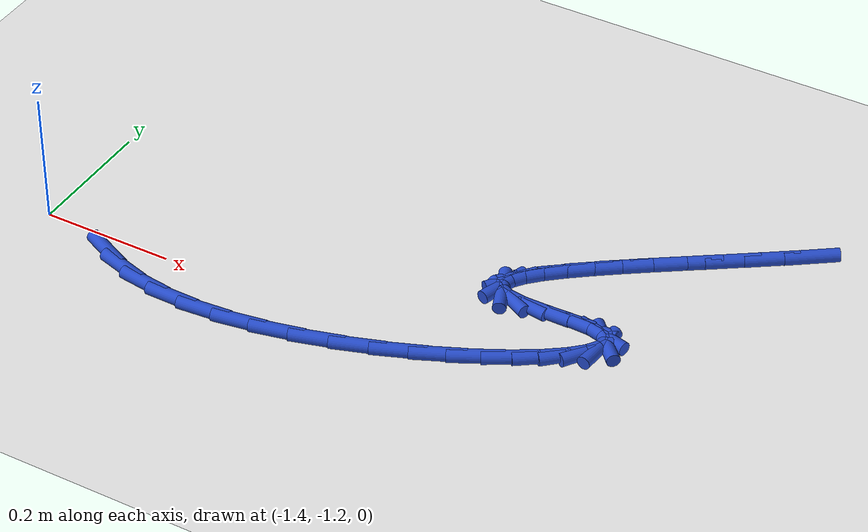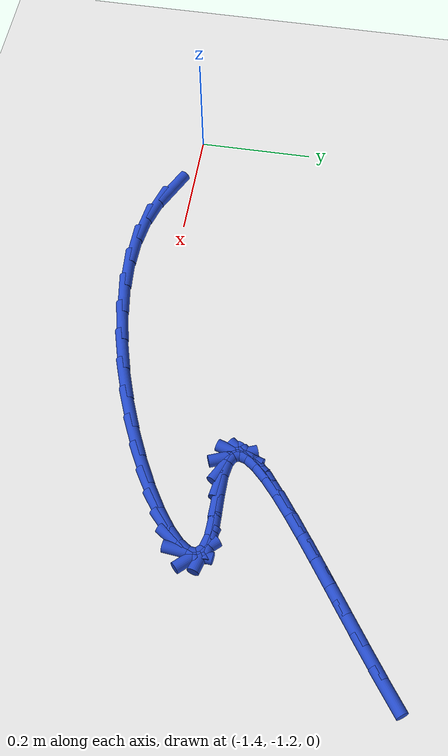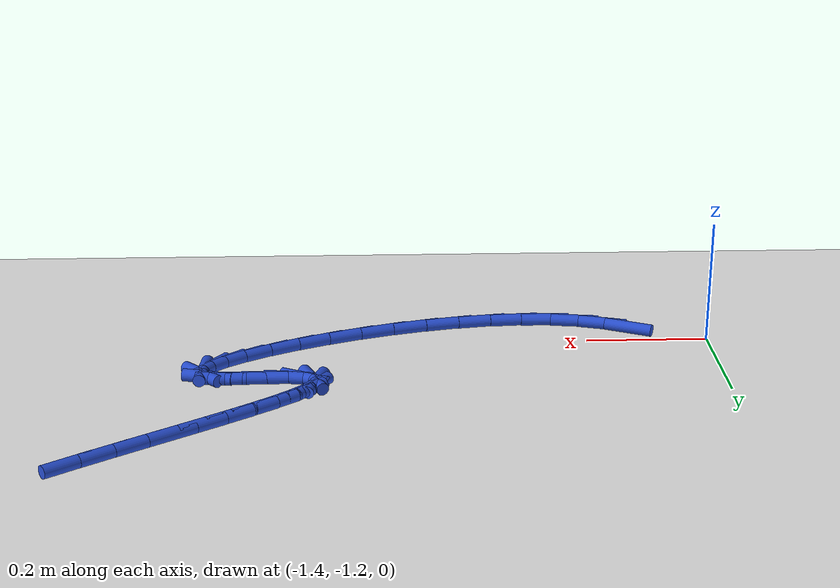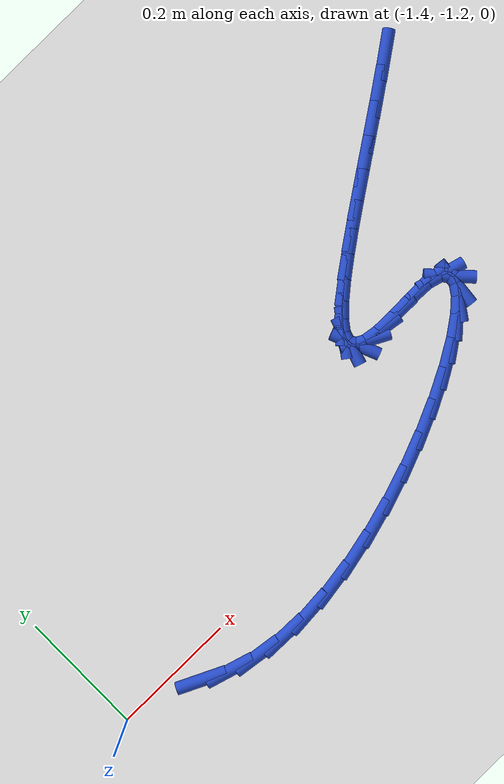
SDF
<sdf version="1.6">
 <world name="default">
  <model name="ground_plane">
   <static>1</static>
   <link name="link">
    <collision name="collision">
     <geometry><plane><normal>0 0 1</normal><size>100 100</size></plane></geometry>
     <surface><friction><ode><mu>100</mu><mu2>50</mu2></ode></friction></surface>
    </collision>
    <visual name="visual">
     <cast_shadows>0</cast_shadows>
     <geometry><plane><normal>0 0 1</normal><size>100 100</size></plane></geometry>
     <material>
      <script><uri>file://media/materials/scripts/gazebo.material</uri><name>Gazebo/WhiteGlow</name></script>
     </material>
    </visual>
   </link>
  </model>
  <model name="line">
   <link name="link_162">
    <pose>-1.2744450038421047 -1.2350158672841616 0.01 0 1.57 -0.4439053100078369</pose>
    <collision name="collision">
     <geometry><cylinder><radius>0.01</radius><length>0.08</length></cylinder></geometry>
    </collision>
    <visual name="visual">
     <material>
      <script><name>Gazebo/Blue</name><uri>file://media/materials/scripts/gazebo.material</uri></script>
     </material>
     <geometry><cylinder><radius>0.01</radius><length>0.08</length></cylinder></geometry>
    </visual>
   </link>
   <link name="link_163">
    <pose>-1.2332095873267295 -1.2546257902048132 0.01 0 1.57 -0.286132054928483</pose>
    <collision name="collision">
     <geometry><cylinder><radius>0.01</radius><length>0.08</length></cylinder></geometry>
    </collision>
    <visual name="visual">
     <material>
      <script><name>Gazebo/Blue</name><uri>file://media/materials/scripts/gazebo.material</uri></script>
     </material>
     <geometry><cylinder><radius>0.01</radius><length>0.08</length></cylinder></geometry>
    </visual>
   </link>
   <link name="link_164">
    <pose>-1.1875805545435727 -1.2680500905544756 0.01 0 1.57 -0.13742164944306184</pose>
    <collision name="collision">
     <geometry><cylinder><radius>0.01</radius><length>0.08</length></cylinder></geometry>
    </collision>
    <visual name="visual">
     <material>
      <script><name>Gazebo/Blue</name><uri>file://media/materials/scripts/gazebo.material</uri></script>
     </material>
     <geometry><cylinder><radius>0.01</radius><length>0.08</length></cylinder></geometry>
    </visual>
   </link>
   <link name="link_165">
    <pose>-1.1378777089525787 -1.2749236606083536 0.01 0 1.57 -0.018472292706329836</pose>
    <collision name="collision">
     <geometry><cylinder><radius>0.01</radius><length>0.08</length></cylinder></geometry>
    </collision>
    <visual name="visual">
     <material>
      <script><name>Gazebo/Blue</name><uri>file://media/materials/scripts/gazebo.material</uri></script>
     </material>
     <geometry><cylinder><radius>0.01</radius><length>0.08</length></cylinder></geometry>
    </visual>
   </link>
   <link name="link_166">
    <pose>-1.0850872491036945 -1.275898932366537 0.01 0 1.57 0.07714788631412677</pose>
    <collision name="collision">
     <geometry><cylinder><radius>0.01</radius><length>0.08</length></cylinder></geometry>
    </collision>
    <visual name="visual">
     <material>
      <script><name>Gazebo/Blue</name><uri>file://media/materials/scripts/gazebo.material</uri></script>
     </material>
     <geometry><cylinder><radius>0.01</radius><length>0.08</length></cylinder></geometry>
    </visual>
   </link>
   <link name="link_167">
    <pose>-1.0302142616538537 -1.2716571786766548 0.01 0 1.57 0.1556117222521611</pose>
    <collision name="collision">
     <geometry><cylinder><radius>0.01</radius><length>0.08</length></cylinder></geometry>
    </collision>
    <visual name="visual">
     <material>
      <script><name>Gazebo/Blue</name><uri>file://media/materials/scripts/gazebo.material</uri></script>
     </material>
     <geometry><cylinder><radius>0.01</radius><length>0.08</length></cylinder></geometry>
    </visual>
   </link>
   <link name="link_168">
    <pose>-0.9742638332599924 -1.2628796723863367 0.01 0 1.57 0.22177073976365766</pose>
    <collision name="collision">
     <geometry><cylinder><radius>0.01</radius><length>0.08</length></cylinder></geometry>
    </collision>
    <visual name="visual">
     <material>
      <script><name>Gazebo/Blue</name><uri>file://media/materials/scripts/gazebo.material</uri></script>
     </material>
     <geometry><cylinder><radius>0.01</radius><length>0.08</length></cylinder></geometry>
    </visual>
   </link>
   <link name="link_169">
    <pose>-0.9182410505790439 -1.2502476863432097 0.01 0 1.57 0.27939315202354315</pose>
    <collision name="collision">
     <geometry><cylinder><radius>0.01</radius><length>0.08</length></cylinder></geometry>
    </collision>
    <visual name="visual">
     <material>
      <script><name>Gazebo/Blue</name><uri>file://media/materials/scripts/gazebo.material</uri></script>
     </material>
     <geometry><cylinder><radius>0.01</radius><length>0.08</length></cylinder></geometry>
    </visual>
   </link>
   <link name="link_170">
    <pose>-0.8631510002679464 -1.2344424933949047 0.01 0 1.57 0.33153427793801343</pose>
    <collision name="collision">
     <geometry><cylinder><radius>0.01</radius><length>0.08</length></cylinder></geometry>
    </collision>
    <visual name="visual">
     <material>
      <script><name>Gazebo/Blue</name><uri>file://media/materials/scripts/gazebo.material</uri></script>
     </material>
     <geometry><cylinder><radius>0.01</radius><length>0.08</length></cylinder></geometry>
    </visual>
   </link>
   <link name="link_171">
    <pose>-0.8099987689836345 -1.21614536638905 0.01 0 1.57 0.38091937223848116</pose>
    <collision name="collision">
     <geometry><cylinder><radius>0.01</radius><length>0.08</length></cylinder></geometry>
    </collision>
    <visual name="visual">
     <material>
      <script><name>Gazebo/Blue</name><uri>file://media/materials/scripts/gazebo.material</uri></script>
     </material>
     <geometry><cylinder><radius>0.01</radius><length>0.08</length></cylinder></geometry>
    </visual>
   </link>
   <link name="link_172">
    <pose>-0.7597894433830428 -1.1960375781732748 0.01 0 1.57 0.43037064542495324</pose>
    <collision name="collision">
     <geometry><cylinder><radius>0.01</radius><length>0.08</length></cylinder></geometry>
    </collision>
    <visual name="visual">
     <material>
      <script><name>Gazebo/Blue</name><uri>file://media/materials/scripts/gazebo.material</uri></script>
     </material>
     <geometry><cylinder><radius>0.01</radius><length>0.08</length></cylinder></geometry>
    </visual>
   </link>
   <link name="link_173">
    <pose>-0.713528110123106 -1.1748004015952072 0.01 0 1.57 0.483417749217814</pose>
    <collision name="collision">
     <geometry><cylinder><radius>0.01</radius><length>0.08</length></cylinder></geometry>
    </collision>
    <visual name="visual">
     <material>
      <script><name>Gazebo/Blue</name><uri>file://media/materials/scripts/gazebo.material</uri></script>
     </material>
     <geometry><cylinder><radius>0.01</radius><length>0.08</length></cylinder></geometry>
    </visual>
   </link>
   <link name="link_174">
    <pose>-0.6722198558607614 -1.1531151095024768 0.01 0 1.57 0.5454396721177419</pose>
    <collision name="collision">
     <geometry><cylinder><radius>0.01</radius><length>0.08</length></cylinder></geometry>
    </collision>
    <visual name="visual">
     <material>
      <script><name>Gazebo/Blue</name><uri>file://media/materials/scripts/gazebo.material</uri></script>
     </material>
     <geometry><cylinder><radius>0.01</radius><length>0.08</length></cylinder></geometry>
    </visual>
   </link>
   <link name="link_175">
    <pose>-0.6368697672529434 -1.1316629747427127 0.01 0 1.57 0.6263203223751467</pose>
    <collision name="collision">
     <geometry><cylinder><radius>0.01</radius><length>0.08</length></cylinder></geometry>
    </collision>
    <visual name="visual">
     <material>
      <script><name>Gazebo/Blue</name><uri>file://media/materials/scripts/gazebo.material</uri></script>
     </material>
     <geometry><cylinder><radius>0.01</radius><length>0.08</length></cylinder></geometry>
    </visual>
   </link>
   <link name="link_176">
    <pose>-0.6084829309565872 -1.111125270163544 0.01 0 1.57 0.7479036232285369</pose>
    <collision name="collision">
     <geometry><cylinder><radius>0.01</radius><length>0.08</length></cylinder></geometry>
    </collision>
    <visual name="visual">
     <material>
      <script><name>Gazebo/Blue</name><uri>file://media/materials/scripts/gazebo.material</uri></script>
     </material>
     <geometry><cylinder><radius>0.01</radius><length>0.08</length></cylinder></geometry>
    </visual>
   </link>
   <link name="link_177">
    <pose>-0.5880644336286281 -1.092183268612599 0.01 0 1.57 0.9690035469404336</pose>
    <collision name="collision">
     <geometry><cylinder><radius>0.01</radius><length>0.08</length></cylinder></geometry>
    </collision>
    <visual name="visual">
     <material>
      <script><name>Gazebo/Blue</name><uri>file://media/materials/scripts/gazebo.material</uri></script>
     </material>
     <geometry><cylinder><radius>0.01</radius><length>0.08</length></cylinder></geometry>
    </visual>
   </link>
   <link name="link_178">
    <pose>-0.5766193619260016 -1.0755182429375065 0.01 0 1.57 1.4642066320616787</pose>
    <collision name="collision">
     <geometry><cylinder><radius>0.01</radius><length>0.08</length></cylinder></geometry>
    </collision>
    <visual name="visual">
     <material>
      <script><name>Gazebo/Blue</name><uri>file://media/materials/scripts/gazebo.material</uri></script>
     </material>
     <geometry><cylinder><radius>0.01</radius><length>0.08</length></cylinder></geometry>
    </visual>
   </link>
   <link name="link_179">
    <pose>-0.5751528025056434 -1.0618114659858966 0.01 0 1.57 -0.8134855246461203</pose>
    <collision name="collision">
     <geometry><cylinder><radius>0.01</radius><length>0.08</length></cylinder></geometry>
    </collision>
    <visual name="visual">
     <material>
      <script><name>Gazebo/Blue</name><uri>file://media/materials/scripts/gazebo.material</uri></script>
     </material>
     <geometry><cylinder><radius>0.01</radius><length>0.08</length></cylinder></geometry>
    </visual>
   </link>
   <link name="link_180">
    <pose>-0.5846698420244882 -1.0517442106053974 0.01 0 1.57 -0.26110594554351885</pose>
    <collision name="collision">
     <geometry><cylinder><radius>0.01</radius><length>0.08</length></cylinder></geometry>
    </collision>
    <visual name="visual">
     <material>
      <script><name>Gazebo/Blue</name><uri>file://media/materials/scripts/gazebo.material</uri></script>
     </material>
     <geometry><cylinder><radius>0.01</radius><length>0.08</length></cylinder></geometry>
    </visual>
   </link>
   <link name="link_181">
    <pose>-0.606175567139472 -1.0459977496436381 0.01 0 1.57 -0.03516266671589752</pose>
    <collision name="collision">
     <geometry><cylinder><radius>0.01</radius><length>0.08</length></cylinder></geometry>
    </collision>
    <visual name="visual">
     <material>
      <script><name>Gazebo/Blue</name><uri>file://media/materials/scripts/gazebo.material</uri></script>
     </material>
     <geometry><cylinder><radius>0.01</radius><length>0.08</length></cylinder></geometry>
    </visual>
   </link>
   <link name="link_182">
    <pose>-0.6395815111855654 -1.0448226232129736 0.01 0 1.57 0.025890859940183166</pose>
    <collision name="collision">
     <geometry><cylinder><radius>0.01</radius><length>0.08</length></cylinder></geometry>
    </collision>
    <visual name="visual">
     <material>
      <script><name>Gazebo/Blue</name><uri>file://media/materials/scripts/gazebo.material</uri></script>
     </material>
     <geometry><cylinder><radius>0.01</radius><length>0.08</length></cylinder></geometry>
    </visual>
   </link>
   <link name="link_183">
    <pose>-0.6780713564518797 -1.0458193811369523 0.01 0 1.57 -0.006632890505255302</pose>
    <collision name="collision">
     <geometry><cylinder><radius>0.01</radius><length>0.08</length></cylinder></geometry>
    </collision>
    <visual name="visual">
     <material>
      <script><name>Gazebo/Blue</name><uri>file://media/materials/scripts/gazebo.material</uri></script>
     </material>
     <geometry><cylinder><radius>0.01</radius><length>0.08</length></cylinder></geometry>
    </visual>
   </link>
   <link name="link_184">
    <pose>-0.7123024461230236 -1.0455923267375076 0.01 0 1.57 -0.15275948163375658</pose>
    <collision name="collision">
     <geometry><cylinder><radius>0.01</radius><length>0.08</length></cylinder></geometry>
    </collision>
    <visual name="visual">
     <material>
      <script><name>Gazebo/Blue</name><uri>file://media/materials/scripts/gazebo.material</uri></script>
     </material>
     <geometry><cylinder><radius>0.01</radius><length>0.08</length></cylinder></geometry>
    </visual>
   </link>
   <link name="link_185">
    <pose>-0.7362113257647646 -1.0419113415409476 0.01 0 1.57 -0.4818268854368034</pose>
    <collision name="collision">
     <geometry><cylinder><radius>0.01</radius><length>0.08</length></cylinder></geometry>
    </collision>
    <visual name="visual">
     <material>
      <script><name>Gazebo/Blue</name><uri>file://media/materials/scripts/gazebo.material</uri></script>
     </material>
     <geometry><cylinder><radius>0.01</radius><length>0.08</length></cylinder></geometry>
    </visual>
   </link>
   <link name="link_186">
    <pose>-0.7499169667288353 -1.0347441808966735 0.01 0 1.57 -1.1797600538571544</pose>
    <collision name="collision">
     <geometry><cylinder><radius>0.01</radius><length>0.08</length></cylinder></geometry>
    </collision>
    <visual name="visual">
     <material>
      <script><name>Gazebo/Blue</name><uri>file://media/materials/scripts/gazebo.material</uri></script>
     </material>
     <geometry><cylinder><radius>0.01</radius><length>0.08</length></cylinder></geometry>
    </visual>
   </link>
   <link name="link_187">
    <pose>-0.7542220681970562 -1.0243016677705719 0.01 0 1.57 1.263076805284532</pose>
    <collision name="collision">
     <geometry><cylinder><radius>0.01</radius><length>0.08</length></cylinder></geometry>
    </collision>
    <visual name="visual">
     <material>
      <script><name>Gazebo/Blue</name><uri>file://media/materials/scripts/gazebo.material</uri></script>
     </material>
     <geometry><cylinder><radius>0.01</radius><length>0.08</length></cylinder></geometry>
    </visual>
   </link>
   <link name="link_188">
    <pose>-0.7499293293512485 -1.010794625128528 0.01 0 1.57 0.9344797549708463</pose>
    <collision name="collision">
     <geometry><cylinder><radius>0.01</radius><length>0.08</length></cylinder></geometry>
    </collision>
    <visual name="visual">
     <material>
      <script><name>Gazebo/Blue</name><uri>file://media/materials/scripts/gazebo.material</uri></script>
     </material>
     <geometry><cylinder><radius>0.01</radius><length>0.08</length></cylinder></geometry>
    </visual>
   </link>
   <link name="link_189">
    <pose>-0.7378414493732331 -0.9944338759364262 0.01 0 1.57 0.7833844794440207</pose>
    <collision name="collision">
     <geometry><cylinder><radius>0.01</radius><length>0.08</length></cylinder></geometry>
    </collision>
    <visual name="visual">
     <material>
      <script><name>Gazebo/Blue</name><uri>file://media/materials/scripts/gazebo.material</uri></script>
     </material>
     <geometry><cylinder><radius>0.01</radius><length>0.08</length></cylinder></geometry>
    </visual>
   </link>
   <link name="link_190">
    <pose>-0.7187611274448308 -0.9754302431601519 0.01 0 1.57 0.7034855295110324</pose>
    <collision name="collision">
     <geometry><cylinder><radius>0.01</radius><length>0.08</length></cylinder></geometry>
    </collision>
    <visual name="visual">
     <material>
      <script><name>Gazebo/Blue</name><uri>file://media/materials/scripts/gazebo.material</uri></script>
     </material>
     <geometry><cylinder><radius>0.01</radius><length>0.08</length></cylinder></geometry>
    </visual>
   </link>
   <link name="link_191">
    <pose>-0.6934910627478627 -0.9539945497655905 0.01 0 1.57 0.6572213735923663</pose>
    <collision name="collision">
     <geometry><cylinder><radius>0.01</radius><length>0.08</length></cylinder></geometry>
    </collision>
    <visual name="visual">
     <material>
      <script><name>Gazebo/Blue</name><uri>file://media/materials/scripts/gazebo.material</uri></script>
     </material>
     <geometry><cylinder><radius>0.01</radius><length>0.08</length></cylinder></geometry>
    </visual>
   </link>
   <link name="link_192">
    <pose>-0.6628339544641495 -0.9303376187186273 0.01 0 1.57 0.6294863119129415</pose>
    <collision name="collision">
     <geometry><cylinder><radius>0.01</radius><length>0.08</length></cylinder></geometry>
    </collision>
    <visual name="visual">
     <material>
      <script><name>Gazebo/Blue</name><uri>file://media/materials/scripts/gazebo.material</uri></script>
     </material>
     <geometry><cylinder><radius>0.01</radius><length>0.08</length></cylinder></geometry>
    </visual>
   </link>
   <link name="link_193">
    <pose>-0.6275925017755125 -0.9046702729851471 0.01 0 1.57 0.6133142682164523</pose>
    <collision name="collision">
     <geometry><cylinder><radius>0.01</radius><length>0.08</length></cylinder></geometry>
    </collision>
    <visual name="visual">
     <material>
      <script><name>Gazebo/Blue</name><uri>file://media/materials/scripts/gazebo.material</uri></script>
     </material>
     <geometry><cylinder><radius>0.01</radius><length>0.08</length></cylinder></geometry>
    </visual>
   </link>
   <link name="link_194">
    <pose>-0.588569403863772 -0.8772033355310352 0.01 0 1.57 0.6051803234514047</pose>
    <collision name="collision">
     <geometry><cylinder><radius>0.01</radius><length>0.08</length></cylinder></geometry>
    </collision>
    <visual name="visual">
     <material>
      <script><name>Gazebo/Blue</name><uri>file://media/materials/scripts/gazebo.material</uri></script>
     </material>
     <geometry><cylinder><radius>0.01</radius><length>0.08</length></cylinder></geometry>
    </visual>
   </link>
   <link name="link_195">
    <pose>-0.5465673599107481 -0.8481476293221762 0.01 0 1.57 0.6032255290511231</pose>
    <collision name="collision">
     <geometry><cylinder><radius>0.01</radius><length>0.08</length></cylinder></geometry>
    </collision>
    <visual name="visual">
     <material>
      <script><name>Gazebo/Blue</name><uri>file://media/materials/scripts/gazebo.material</uri></script>
     </material>
     <geometry><cylinder><radius>0.01</radius><length>0.08</length></cylinder></geometry>
    </visual>
   </link>
   <link name="link_196">
    <pose>-0.5023890690982636 -0.8177139773244564 0.01 0 1.57 0.6065069547326982</pose>
    <collision name="collision">
     <geometry><cylinder><radius>0.01</radius><length>0.08</length></cylinder></geometry>
    </collision>
    <visual name="visual">
     <material>
      <script><name>Gazebo/Blue</name><uri>file://media/materials/scripts/gazebo.material</uri></script>
     </material>
     <geometry><cylinder><radius>0.01</radius><length>0.08</length></cylinder></geometry>
    </visual>
   </link>
   <link name="link_197">
    <pose>-0.45683723060813863 -0.7861132025037604 0.01 0 1.57 0.6146612713310777</pose>
    <collision name="collision">
     <geometry><cylinder><radius>0.01</radius><length>0.08</length></cylinder></geometry>
    </collision>
    <visual name="visual">
     <material>
      <script><name>Gazebo/Blue</name><uri>file://media/materials/scripts/gazebo.material</uri></script>
     </material>
     <geometry><cylinder><radius>0.01</radius><length>0.08</length></cylinder></geometry>
    </visual>
   </link>
   <link name="link_198">
    <pose>-0.4107145436221937 -0.7535561278259733 0.01 0 1.57 0.6277607540678454</pose>
    <collision name="collision">
     <geometry><cylinder><radius>0.01</radius><length>0.08</length></cylinder></geometry>
    </collision>
    <visual name="visual">
     <material>
      <script><name>Gazebo/Blue</name><uri>file://media/materials/scripts/gazebo.material</uri></script>
     </material>
     <geometry><cylinder><radius>0.01</radius><length>0.08</length></cylinder></geometry>
    </visual>
   </link>
  </model>
 </world>
</sdf>
